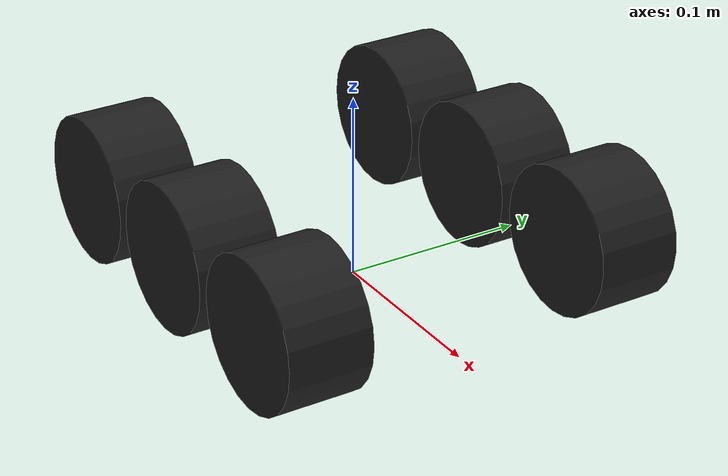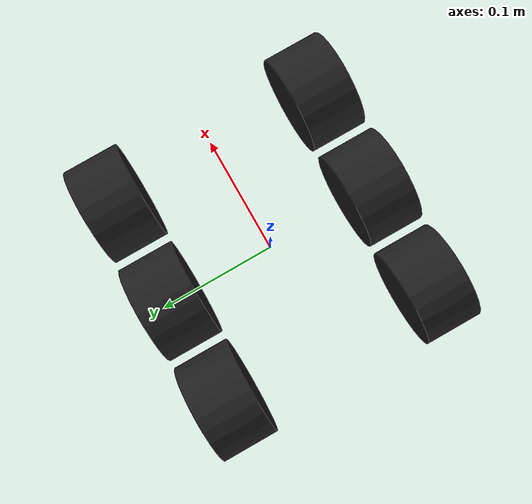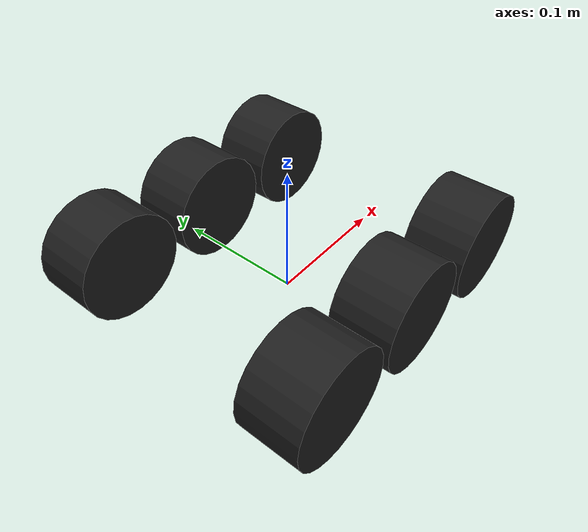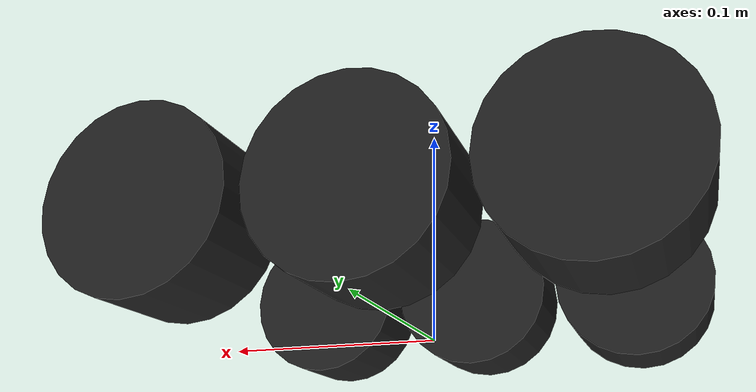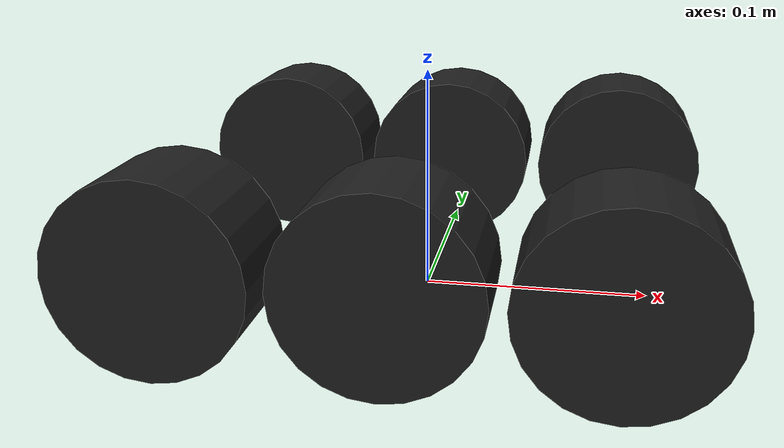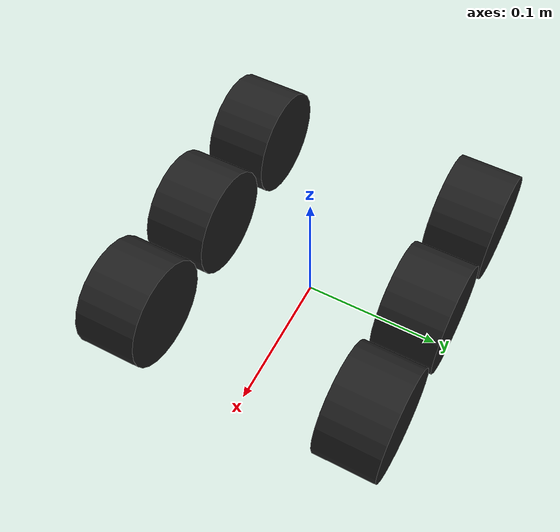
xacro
<?xml version="1.0" encoding="UTF-8"?>
<robot xmlns:xacro="http://wiki.ros.org/xacro" name="wsugv">

  <!-- Use this if parameters are set from the launch file, otherwise delete -->
  <xacro:arg name="prefix" default="" />

  <xacro:arg name="use_mock_hardware" default="false" />
  <xacro:arg name="mock_sensor_commands" default="false" />
  <xacro:arg name="sim_gazebo_classic" default="false" />
  <xacro:arg name="sim_gazebo" default="false" />
  <xacro:arg name="simulation_controllers" default="" />

  <xacro:include filename="$(find wsugv_description)/urdf/wsugv/wsugv_macro.xacro"/>
  <xacro:include filename="$(find wsugv_description)/urdf/wsugv/wsugv_macro.ros2_control.xacro"/>

  <!-- Load robot's macro with parameters -->
  <xacro:wsugv wheel_spacing="0.0862" wheel_separation="0.17621" wheel_radius="0.04" wheel_width="0.045">
  </xacro:wsugv>

</robot>

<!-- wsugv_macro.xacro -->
<robot xmlns:xacro="http://wiki.ros.org/xacro">
  <xacro:property name="PI" value="3.1415926535897931" />
  <xacro:include filename="$(find wsugv_description)/urdf/common/inertials.xacro" />
  <xacro:include filename="$(find wsugv_description)/urdf/common/materials.xacro" />

  <xacro:macro name="wheel" params="prefix x_offset y_offset wheel_radius wheel_width">
    <link name="${prefix}_wheel_link">
    <xacro:default_inertial/>

    <visual>
      <origin xyz="0 0 0" rpy="0 ${PI/2} ${PI/2}" />
      <geometry>
        <cylinder radius="${wheel_radius}" length="${wheel_width}" />
      </geometry>
      <material name="black"/>
    </visual>

    <collision>
      <origin xyz="0 0 0" rpy="0 ${PI/2} ${PI/2}" />
      <geometry>
        <cylinder radius="${wheel_radius}" length="${wheel_width}" />
      </geometry>
    </collision>
    </link>

    <joint name="${prefix}_wheel_joint" type="continuous">
      <origin xyz="${x_offset} ${y_offset} ${wheel_radius}" rpy="0 0 0"/>
      <parent link="base_link" />
      <child link="${prefix}_wheel_link" />
      <axis xyz="0 1 0" />
    </joint>
  </xacro:macro>

  <xacro:macro name="wsugv" params="wheel_spacing wheel_separation wheel_radius wheel_width">
    <!-- LINKS -->
    <!-- base link -->
    <link name="base_link">

      <xacro:default_inertial/>
      <visual>
        <origin xyz="0 0 0" rpy="0 0 0" />
        <geometry>
          <box size="0.001 0.001 0.001" />
        </geometry>
        <material name="black"/>
      </visual>
      <collision>
        <origin xyz="0 0 0" rpy="0 0 0" />
        <geometry>
          <box size="0.001 0.001 0.001" />
        </geometry>
      </collision>
    </link>

    <!-- END LINKS -->

    <!-- JOINTS -->
    <xacro:wheel prefix="front_left"  x_offset="${wheel_spacing}" y_offset="${wheel_separation / 2}" wheel_radius="${wheel_radius}" wheel_width="${wheel_width}"/>
    <xacro:wheel prefix="front_right" x_offset="${wheel_spacing}" y_offset="${wheel_separation / -2}" wheel_radius="${wheel_radius}" wheel_width="${wheel_width}"/>
    <xacro:wheel prefix="mid_left"    x_offset="0" y_offset="${wheel_separation / 2}" wheel_radius="${wheel_radius}" wheel_width="${wheel_width}"/>
    <xacro:wheel prefix="mid_right"   x_offset="0" y_offset="${wheel_separation / -2}" wheel_radius="${wheel_radius}" wheel_width="${wheel_width}"/>
    <xacro:wheel prefix="rear_left"   x_offset="${-wheel_spacing}" y_offset="${wheel_separation / 2}" wheel_radius="${wheel_radius}" wheel_width="${wheel_width}"/>
    <xacro:wheel prefix="rear_right"  x_offset="${-wheel_spacing}" y_offset="${wheel_separation / -2}" wheel_radius="${wheel_radius}" wheel_width="${wheel_width}"/>

    <!-- END JOINTS -->
  </xacro:macro>
</robot>
